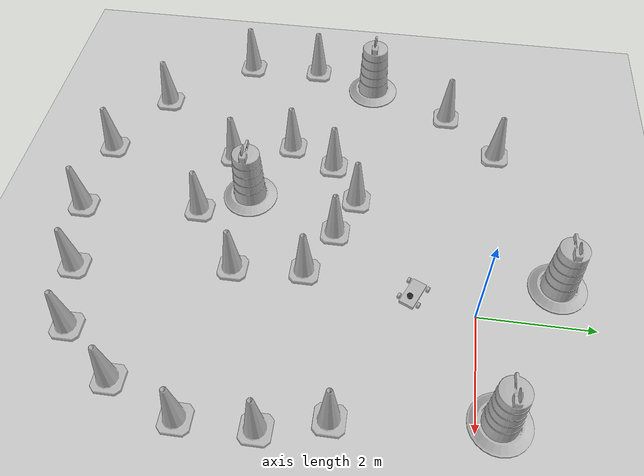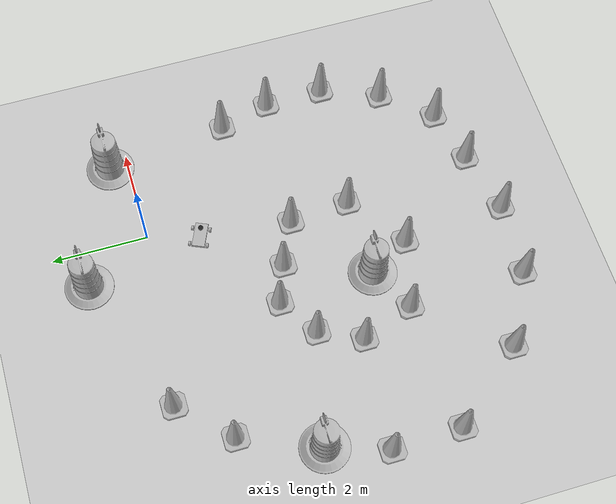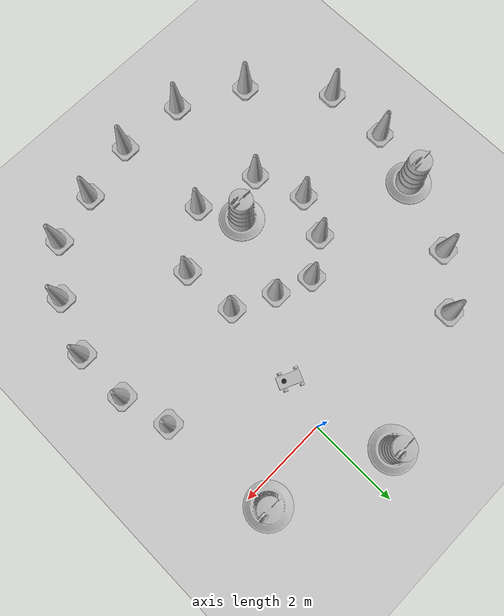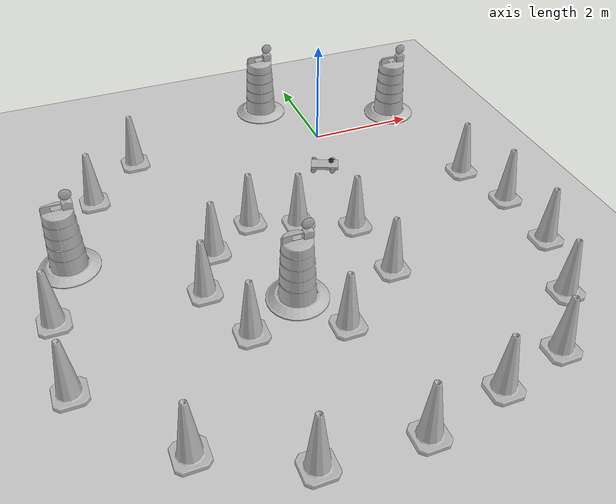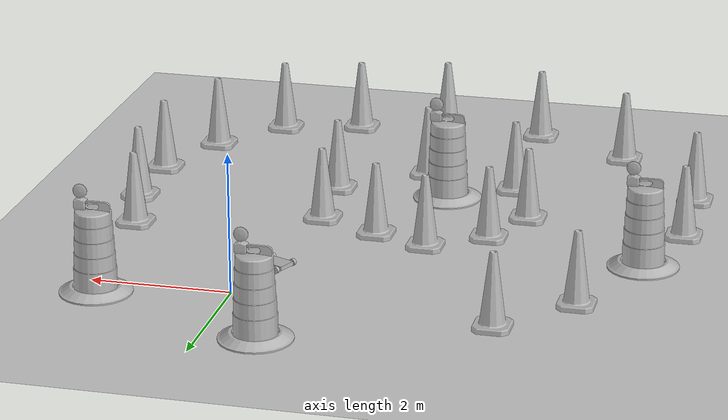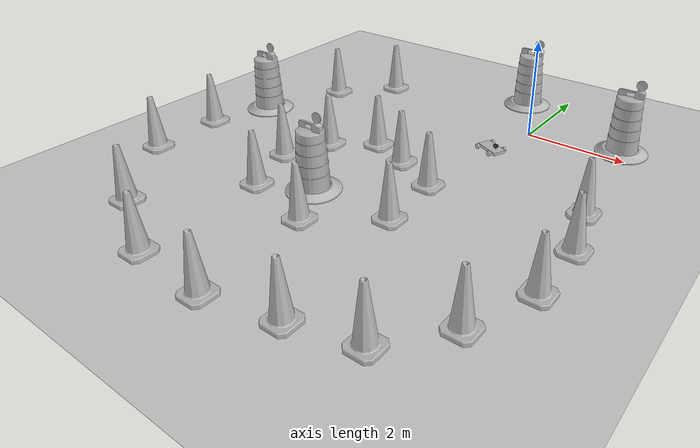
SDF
<sdf version="1.7">
 <world name="default">
  <light name="sun" type="directional">
   <pose>0 0 10 0 -0 0</pose>
   <diffuse>0.8 0.8 0.8 1</diffuse>
   <specular>0.2 0.2 0.2 1</specular>
   <attenuation>
    <range>1000</range>
    <constant>0.9</constant>
    <linear>0.01</linear>
    <quadratic>0.001</quadratic>
   </attenuation>
   <direction>-0.5 0.1 -0.9</direction>
   <spot><inner_angle>0</inner_angle><outer_angle>0</outer_angle><falloff>0</falloff></spot>
  </light>
  <model name="ground_plane">
   <static>1</static>
   <link name="link">
    <collision name="collision">
     <geometry><plane><normal>0 0 1</normal><size>100 100</size></plane></geometry>
     <surface>
      <contact><collide_bitmask>65535</collide_bitmask></contact>
      <friction><ode><mu>100</mu><mu2>50</mu2></ode></friction>
     </surface>
    </collision>
    <visual name="visual">
     <cast_shadows>0</cast_shadows>
     <geometry><plane><normal>0 0 1</normal><size>100 100</size></plane></geometry>
     <material>
      <script><uri>file://media/materials/scripts/gazebo.material</uri><name>Gazebo/Grey</name></script>
     </material>
    </visual>
   </link>
  </model>
  <gravity>0 0 -9.8</gravity>
  <magnetic_field>6e-06 2.3e-05 -4.2e-05</magnetic_field>
  <atmosphere type="adiabatic"/>
  <physics type="ode">
   <max_step_size>0.001</max_step_size>
   <real_time_factor>1</real_time_factor>
   <real_time_update_rate>1000</real_time_update_rate>
  </physics>
  <scene><ambient>0.4 0.4 0.4 1</ambient><background>0.7 0.7 0.7 1</background><shadows>1</shadows></scene>
  <spherical_coordinates>
   <surface_model>EARTH_WGS84</surface_model>
   <latitude_deg>0</latitude_deg>
   <longitude_deg>0</longitude_deg>
   <elevation>0</elevation>
   <heading_deg>0</heading_deg>
  </spherical_coordinates>
  <model name="Construction Barrel">
   <link name="link">
    <inertial>
     <pose>0 0 0.4 0 -0 0</pose>
     <mass>500</mass>
     <inertia><ixx>51.2096</ixx><iyy>51.2096</iyy><izz>25</izz><ixy>0</ixy><ixz>0</ixz><iyz>0</iyz></inertia>
    </inertial>
    <collision name="collision">
     <geometry><mesh><uri>model://construction_barrel/meshes/construction_barrel.dae</uri></mesh></geometry>
    </collision>
    <visual name="visual">
     <geometry><mesh><uri>model://construction_barrel/meshes/construction_barrel.dae</uri></mesh></geometry>
    </visual>
   </link>
   <pose>-0.756328 1.39221 -0 0 -0 -3.9e-05</pose>
  </model>
  <model name="Construction Barrel_0">
   <link name="link">
    <inertial>
     <pose>0 0 0.4 0 -0 0</pose>
     <mass>500</mass>
     <inertia><ixx>51.2096</ixx><iyy>51.2096</iyy><izz>25</izz><ixy>0</ixy><ixz>0</ixz><iyz>0</iyz></inertia>
    </inertial>
    <collision name="collision">
     <geometry><mesh><uri>model://construction_barrel/meshes/construction_barrel.dae</uri></mesh></geometry>
    </collision>
    <visual name="visual">
     <geometry><mesh><uri>model://construction_barrel/meshes/construction_barrel.dae</uri></mesh></geometry>
    </visual>
   </link>
   <pose>1.80011 0.377121 -1e-06 3e-06 7e-06 -3.4e-05</pose>
  </model>
  <model name="Construction Cone">
   <link name="link">
    <collision name="collision">
     <geometry>
      <mesh><scale>10 10 10</scale><uri>model://construction_cone/meshes/construction_cone.dae</uri></mesh>
     </geometry>
    </collision>
    <visual name="visual">
     <geometry>
      <mesh><scale>10 10 10</scale><uri>model://construction_cone/meshes/construction_cone.dae</uri></mesh>
     </geometry>
    </visual>
    <inertial>
     <inertia><ixx>1</ixx><ixy>0</ixy><ixz>0</ixz><iyy>1</iyy><iyz>0</iyz><izz>1</izz></inertia>
     <mass>1</mass>
    </inertial>
   </link>
   <pose>-2.19745 -2.25046 -0 0 -0 0</pose>
  </model>
  <model name="Construction Cone_0">
   <link name="link">
    <collision name="collision">
     <geometry>
      <mesh><scale>10 10 10</scale><uri>model://construction_cone/meshes/construction_cone.dae</uri></mesh>
     </geometry>
    </collision>
    <visual name="visual">
     <geometry>
      <mesh><scale>10 10 10</scale><uri>model://construction_cone/meshes/construction_cone.dae</uri></mesh>
     </geometry>
    </visual>
    <inertial>
     <inertia><ixx>1</ixx><ixy>0</ixy><ixz>0</ixz><iyy>1</iyy><iyz>0</iyz><izz>1</izz></inertia>
     <mass>1</mass>
    </inertial>
   </link>
   <pose>-1.40494 -2.55135 -5e-06 -4e-06 1e-06 0</pose>
  </model>
  <model name="Construction Cone_1">
   <link name="link">
    <collision name="collision">
     <geometry>
      <mesh><scale>10 10 10</scale><uri>model://construction_cone/meshes/construction_cone.dae</uri></mesh>
     </geometry>
    </collision>
    <visual name="visual">
     <geometry>
      <mesh><scale>10 10 10</scale><uri>model://construction_cone/meshes/construction_cone.dae</uri></mesh>
     </geometry>
    </visual>
    <inertial>
     <inertia><ixx>1</ixx><ixy>0</ixy><ixz>0</ixz><iyy>1</iyy><iyz>0</iyz><izz>1</izz></inertia>
     <mass>1</mass>
    </inertial>
   </link>
   <pose>-0.501986 -2.9745 -0 -0 -0 -0</pose>
  </model>
  <model name="Construction Cone_2">
   <link name="link">
    <collision name="collision">
     <geometry>
      <mesh><scale>10 10 10</scale><uri>model://construction_cone/meshes/construction_cone.dae</uri></mesh>
     </geometry>
    </collision>
    <visual name="visual">
     <geometry>
      <mesh><scale>10 10 10</scale><uri>model://construction_cone/meshes/construction_cone.dae</uri></mesh>
     </geometry>
    </visual>
    <inertial>
     <inertia><ixx>1</ixx><ixy>0</ixy><ixz>0</ixz><iyy>1</iyy><iyz>0</iyz><izz>1</izz></inertia>
     <mass>1</mass>
    </inertial>
   </link>
   <pose>2.09724 -2.18232 -0 0 -0 0</pose>
  </model>
  <model name="Construction Cone_3">
   <link name="link">
    <collision name="collision">
     <geometry>
      <mesh><scale>10 10 10</scale><uri>model://construction_cone/meshes/construction_cone.dae</uri></mesh>
     </geometry>
    </collision>
    <visual name="visual">
     <geometry>
      <mesh><scale>10 10 10</scale><uri>model://construction_cone/meshes/construction_cone.dae</uri></mesh>
     </geometry>
    </visual>
    <inertial>
     <inertia><ixx>1</ixx><ixy>0</ixy><ixz>0</ixz><iyy>1</iyy><iyz>0</iyz><izz>1</izz></inertia>
     <mass>1</mass>
    </inertial>
   </link>
   <pose>-3.69879 0.345038 -6e-06 -4e-06 0 0</pose>
  </model>
  <model name="Construction Cone_4">
   <link name="link">
    <collision name="collision">
     <geometry>
      <mesh><scale>10 10 10</scale><uri>model://construction_cone/meshes/construction_cone.dae</uri></mesh>
     </geometry>
    </collision>
    <visual name="visual">
     <geometry>
      <mesh><scale>10 10 10</scale><uri>model://construction_cone/meshes/construction_cone.dae</uri></mesh>
     </geometry>
    </visual>
    <inertial>
     <inertia><ixx>1</ixx><ixy>0</ixy><ixz>0</ixz><iyy>1</iyy><iyz>0</iyz><izz>1</izz></inertia>
     <mass>1</mass>
    </inertial>
   </link>
   <pose>-0.406438 -4.23374 -6e-06 -4e-06 0 0</pose>
  </model>
  <model name="Construction Cone_5">
   <link name="link">
    <collision name="collision">
     <geometry>
      <mesh><scale>10 10 10</scale><uri>model://construction_cone/meshes/construction_cone.dae</uri></mesh>
     </geometry>
    </collision>
    <visual name="visual">
     <geometry>
      <mesh><scale>10 10 10</scale><uri>model://construction_cone/meshes/construction_cone.dae</uri></mesh>
     </geometry>
    </visual>
    <inertial>
     <inertia><ixx>1</ixx><ixy>0</ixy><ixz>0</ixz><iyy>1</iyy><iyz>0</iyz><izz>1</izz></inertia>
     <mass>1</mass>
    </inertial>
   </link>
   <pose>2.38815 -3.2576 -0 0 -1e-06 0</pose>
  </model>
  <model name="Construction Cone_6">
   <link name="link">
    <collision name="collision">
     <geometry>
      <mesh><scale>10 10 10</scale><uri>model://construction_cone/meshes/construction_cone.dae</uri></mesh>
     </geometry>
    </collision>
    <visual name="visual">
     <geometry>
      <mesh><scale>10 10 10</scale><uri>model://construction_cone/meshes/construction_cone.dae</uri></mesh>
     </geometry>
    </visual>
    <inertial>
     <inertia><ixx>1</ixx><ixy>0</ixy><ixz>0</ixz><iyy>1</iyy><iyz>0</iyz><izz>1</izz></inertia>
     <mass>1</mass>
    </inertial>
   </link>
   <pose>2.39316 -4.49605 -0 0 -0 0</pose>
  </model>
  <model name="Construction Cone_7">
   <link name="link">
    <collision name="collision">
     <geometry>
      <mesh><scale>10 10 10</scale><uri>model://construction_cone/meshes/construction_cone.dae</uri></mesh>
     </geometry>
    </collision>
    <visual name="visual">
     <geometry>
      <mesh><scale>10 10 10</scale><uri>model://construction_cone/meshes/construction_cone.dae</uri></mesh>
     </geometry>
    </visual>
    <inertial>
     <inertia><ixx>1</ixx><ixy>0</ixy><ixz>0</ixz><iyy>1</iyy><iyz>0</iyz><izz>1</izz></inertia>
     <mass>1</mass>
    </inertial>
   </link>
   <pose>-3.00495 -2.78053 -0 0 -0 0</pose>
  </model>
  <model name="Construction Cone_8">
   <link name="link">
    <collision name="collision">
     <geometry>
      <mesh><scale>10 10 10</scale><uri>model://construction_cone/meshes/construction_cone.dae</uri></mesh>
     </geometry>
    </collision>
    <visual name="visual">
     <geometry>
      <mesh><scale>10 10 10</scale><uri>model://construction_cone/meshes/construction_cone.dae</uri></mesh>
     </geometry>
    </visual>
    <inertial>
     <inertia><ixx>1</ixx><ixy>0</ixy><ixz>0</ixz><iyy>1</iyy><iyz>0</iyz><izz>1</izz></inertia>
     <mass>1</mass>
    </inertial>
   </link>
   <pose>-4.64786 -0.646522 -0 0 -0 0</pose>
  </model>
  <model name="Construction Barrel_1">
   <link name="link">
    <inertial>
     <pose>0 0 0.4 0 -0 0</pose>
     <mass>500</mass>
     <inertia><ixx>51.2096</ixx><iyy>51.2096</iyy><izz>25</izz><ixy>0</ixy><ixz>0</ixz><iyz>0</iyz></inertia>
    </inertial>
    <collision name="collision">
     <geometry><mesh><uri>model://construction_barrel/meshes/construction_barrel.dae</uri></mesh></geometry>
    </collision>
    <visual name="visual">
     <geometry><mesh><uri>model://construction_barrel/meshes/construction_barrel.dae</uri></mesh></geometry>
    </visual>
   </link>
   <pose>-5.3109 -2.23712 -2e-06 4e-06 7e-06 -2.3e-05</pose>
  </model>
  <model name="Construction Barrel_2">
   <link name="link">
    <inertial>
     <pose>0 0 0.4 0 -0 0</pose>
     <mass>500</mass>
     <inertia><ixx>51.2096</ixx><iyy>51.2096</iyy><izz>25</izz><ixy>0</ixy><ixz>0</ixz><iyz>0</iyz></inertia>
    </inertial>
    <collision name="collision">
     <geometry><mesh><uri>model://construction_barrel/meshes/construction_barrel.dae</uri></mesh></geometry>
    </collision>
    <visual name="visual">
     <geometry><mesh><uri>model://construction_barrel/meshes/construction_barrel.dae</uri></mesh></geometry>
    </visual>
   </link>
   <pose>-2.07699 -4.26202 -2e-06 4e-06 7e-06 -1.8e-05</pose>
  </model>
  <audio><device>default</device></audio>
  <model name="robot">
   <link name="base_link">
    <inertial>
     <pose>0.001208 0 0.25099 0 -0 0</pose>
     <mass>10.1</mass>
     <inertia>
      <ixx>0.0209149</ixx>
      <ixy>6.5381e-10</ixy>
      <ixz>-0.00120792</ixz>
      <iyy>0.0410656</iyy>
      <iyz>5.2628e-05</iyz>
      <izz>0.0253367</izz>
     </inertia>
    </inertial>
    <collision name="base_link_fixed_joint_lump__chassis_collision">
     <pose>0 0 0.25 0 -0 0</pose>
     <geometry><box><size>0.525 0.267 0.06</size></box></geometry>
    </collision>
    <collision name="base_link_fixed_joint_lump__laser_frame_collision_1">
     <pose>0.122 0 0.35 0 -0 0</pose>
     <geometry><cylinder><length>0.04</length><radius>0.05</radius></cylinder></geometry>
    </collision>
    <visual name="base_link_fixed_joint_lump__chassis_visual">
     <pose>0 0 0.25 0 -0 0</pose>
     <geometry><box><size>0.525 0.267 0.06</size></box></geometry>
    </visual>
    <visual name="base_link_fixed_joint_lump__laser_frame_visual_1">
     <pose>0.122 0 0.35 0 -0 0</pose>
     <geometry><cylinder><length>0.04</length><radius>0.05</radius></cylinder></geometry>
     <material>
      <script><name>Gazebo/Black</name><uri>file://media/materials/scripts/gazebo.material</uri></script>
     </material>
    </visual>
    <visual name="base_link_fixed_joint_lump__laser_frame_visual_2">
     <pose>0.122 0 0.3 0 -0 0</pose>
     <geometry><cylinder><length>0.1</length><radius>0.01</radius></cylinder></geometry>
     <material>
      <script><name>Gazebo/Black</name><uri>file://media/materials/scripts/gazebo.material</uri></script>
     </material>
    </visual>
    <sensor name="laser" type="ray">
     <visualize>0</visualize>
     <update_rate>10</update_rate>
     <ray>
      <scan>
       <horizontal>
        <samples>360</samples>
        <min_angle>-3.14</min_angle>
        <max_angle>3.14</max_angle>
        <resolution>1</resolution>
       </horizontal>
       <vertical><samples>1</samples><min_angle>0</min_angle><max_angle>0</max_angle></vertical>
      </scan>
      <range><min>0.3</min><max>12</max></range>
     </ray>
     <plugin name="laser_controller" filename="libgazebo_ros_ray_sensor.so">
      <ros><argument>~/out:=scan</argument></ros>
      <output_type>sensor_msgs/LaserScan</output_type>
      <frame_name>laser_frame</frame_name>
     </plugin>
     <pose>0.122 0 0.35 0 -0 0</pose>
    </sensor>
   </link>
   <joint name="left_wheel_joint" type="revolute">
    <pose relative_to="base_link">-0.213 0.1835 0.24 -1.57 0 0</pose>
    <parent>base_link</parent>
    <child>left_wheel</child>
    <axis>
     <xyz>0 0 1</xyz>
     <limit><lower>-1e+16</lower><upper>1e+16</upper></limit>
     <dynamics>
      <damping>0</damping>
      <friction>0</friction>
      <spring_reference>0</spring_reference>
      <spring_stiffness>0</spring_stiffness>
     </dynamics>
    </axis>
   </joint>
   <link name="left_wheel">
    <pose relative_to="left_wheel_joint">0 0 0 0 -0 0</pose>
    <inertial>
     <mass>0.50768</mass>
     <inertia>
      <ixx>0.00048677</ixx>
      <ixy>-6.188e-10</ixy>
      <ixz>-5.6106e-08</ixz>
      <iyy>0.00085979</iyy>
      <iyz>7.7341e-10</iyz>
      <izz>0.0004867</izz>
     </inertia>
    </inertial>
    <collision name="left_wheel_collision">
     <geometry><cylinder><length>0.045</length><radius>0.05</radius></cylinder></geometry>
    </collision>
    <visual name="left_wheel_visual">
     <geometry><cylinder><length>0.045</length><radius>0.05</radius></cylinder></geometry>
    </visual>
   </link>
   <joint name="right_wheel_joint" type="revolute">
    <pose relative_to="base_link">-0.213 -0.1835 0.24 -1.57 0 0</pose>
    <parent>base_link</parent>
    <child>right_wheel</child>
    <axis>
     <xyz>0 0 1</xyz>
     <limit><lower>-1e+16</lower><upper>1e+16</upper></limit>
     <dynamics>
      <damping>0</damping>
      <friction>0</friction>
      <spring_reference>0</spring_reference>
      <spring_stiffness>0</spring_stiffness>
     </dynamics>
    </axis>
   </joint>
   <link name="right_wheel">
    <pose relative_to="right_wheel_joint">0 0 0 0 -0 0</pose>
    <inertial>
     <mass>0.50768</mass>
     <inertia>
      <ixx>0.00048677</ixx>
      <ixy>-6.188e-10</ixy>
      <ixz>-5.6106e-08</ixz>
      <iyy>0.00085979</iyy>
      <iyz>7.7341e-10</iyz>
      <izz>0.0004867</izz>
     </inertia>
    </inertial>
    <collision name="right_wheel_collision">
     <geometry><cylinder><length>0.045</length><radius>0.05</radius></cylinder></geometry>
    </collision>
    <visual name="right_wheel_visual">
     <geometry><cylinder><length>0.045</length><radius>0.05</radius></cylinder></geometry>
    </visual>
   </link>
   <joint name="steering_left_joint" type="revolute">
    <pose relative_to="base_link">0.1505 0.1835 0.24 0 -0 0</pose>
    <parent>base_link</parent>
    <child>steering_left_link</child>
    <axis>
     <xyz>0 0 1</xyz>
     <limit><lower>-1e+16</lower><upper>1e+16</upper></limit>
     <dynamics><spring_reference>0</spring_reference><spring_stiffness>0</spring_stiffness></dynamics>
    </axis>
   </joint>
   <link name="steering_left_link">
    <pose relative_to="steering_left_joint">0 0 0 0 -0 0</pose>
    <inertial>
     <mass>0.005</mass>
     <inertia><ixx>0.1</ixx><ixy>0</ixy><ixz>0</ixz><iyy>0.1</iyy><iyz>0</iyz><izz>0.1</izz></inertia>
    </inertial>
    <visual name="steering_left_link_visual"><geometry><box><size>0.01 0.01 0.01</size></box></geometry></visual>
   </link>
   <joint name="traction_left_joint" type="revolute">
    <pose relative_to="steering_left_link">0 0 0 -1.57 1.57 -0</pose>
    <parent>steering_left_link</parent>
    <child>wheel_front_left_link</child>
    <axis>
     <xyz>0 0 1</xyz>
     <limit><lower>-1e+16</lower><upper>1e+16</upper></limit>
     <dynamics><spring_reference>0</spring_reference><spring_stiffness>0</spring_stiffness></dynamics>
    </axis>
   </joint>
   <link name="wheel_front_left_link">
    <pose relative_to="traction_left_joint">0 0 0 0 -0 0</pose>
    <inertial>
     <mass>0.50768</mass>
     <inertia>
      <ixx>0.00048677</ixx>
      <ixy>-6.188e-10</ixy>
      <ixz>-5.6106e-08</ixz>
      <iyy>0.00085979</iyy>
      <iyz>7.7341e-10</iyz>
      <izz>0.0004867</izz>
     </inertia>
    </inertial>
    <collision name="wheel_front_left_link_collision">
     <geometry><cylinder><length>0.045</length><radius>0.05</radius></cylinder></geometry>
    </collision>
    <visual name="wheel_front_left_link_visual">
     <geometry><cylinder><length>0.045</length><radius>0.05</radius></cylinder></geometry>
    </visual>
   </link>
   <joint name="steering_right_joint" type="revolute">
    <pose relative_to="base_link">0.1505 -0.1835 0.24 0 -0 0</pose>
    <parent>base_link</parent>
    <child>steering_right_link</child>
    <axis>
     <xyz>0 0 1</xyz>
     <limit><lower>-1e+16</lower><upper>1e+16</upper></limit>
     <dynamics><spring_reference>0</spring_reference><spring_stiffness>0</spring_stiffness></dynamics>
    </axis>
   </joint>
   <link name="steering_right_link">
    <pose relative_to="steering_right_joint">0 0 0 0 -0 0</pose>
    <inertial>
     <mass>0.005</mass>
     <inertia><ixx>0.1</ixx><ixy>0</ixy><ixz>0</ixz><iyy>0.1</iyy><iyz>0</iyz><izz>0.1</izz></inertia>
    </inertial>
    <visual name="steering_right_link_visual"><geometry><box><size>0.01 0.01 0.01</size></box></geometry></visual>
   </link>
   <joint name="traction_right_joint" type="revolute">
    <pose relative_to="steering_right_link">0 0 0 -1.57 1.57 -0</pose>
    <parent>steering_right_link</parent>
    <child>wheel_front_right_link</child>
    <axis>
     <xyz>0 0 1</xyz>
     <limit><lower>-1e+16</lower><upper>1e+16</upper></limit>
     <dynamics><spring_reference>0</spring_reference><spring_stiffness>0</spring_stiffness></dynamics>
    </axis>
   </joint>
   <link name="wheel_front_right_link">
    <pose relative_to="traction_right_joint">0 0 0 0 -0 0</pose>
    <inertial>
     <mass>0.50768</mass>
     <inertia>
      <ixx>0.00048677</ixx>
      <ixy>-6.188e-10</ixy>
      <ixz>-5.6106e-08</ixz>
      <iyy>0.00085979</iyy>
      <iyz>7.7341e-10</iyz>
      <izz>0.0004867</izz>
     </inertia>
    </inertial>
    <collision name="wheel_front_right_link_collision">
     <geometry><cylinder><length>0.045</length><radius>0.05</radius></cylinder></geometry>
    </collision>
    <visual name="wheel_front_right_link_visual">
     <geometry><cylinder><length>0.045</length><radius>0.05</radius></cylinder></geometry>
    </visual>
   </link>
   <static>0</static>
   <plugin name="gazebo_ros2_control" filename="libgazebo_ros2_control.so">
    <parameters>/home/kaban/project_robot_ws_sim/project_robot_ws/install/gazebo_ros2_control_demos/share/gazebo_ros2_control_demos/config/bicycle_drive_controller.yaml</parameters>
    <ros>
     <remapping>/ackermann_controller/tf_odometry:=/tf</remapping>
     <remapping>~/robot_description:=/robot_description</remapping>
     <remapping>/ackermann_controller/reference_unstamped:=/cmd_vel</remapping>
    </ros>
   </plugin>
   <pose>-0.283936 -1.06932 -0.190128 -3e-06 0.000673 -0.416961</pose>
  </model>
  <model name="Construction Cone_6_clone">
   <link name="link">
    <collision name="collision">
     <geometry>
      <mesh><scale>10 10 10</scale><uri>model://construction_cone/meshes/construction_cone.dae</uri></mesh>
     </geometry>
    </collision>
    <visual name="visual">
     <geometry>
      <mesh><scale>10 10 10</scale><uri>model://construction_cone/meshes/construction_cone.dae</uri></mesh>
     </geometry>
    </visual>
    <inertial>
     <inertia><ixx>1</ixx><ixy>0</ixy><ixz>0</ixz><iyy>1</iyy><iyz>0</iyz><izz>1</izz></inertia>
     <mass>1</mass>
    </inertial>
   </link>
   <pose>1.90677 -5.70695 -1e-05 -1e-06 0 0</pose>
  </model>
  <model name="Construction Cone_6_clone_0">
   <link name="link">
    <collision name="collision">
     <geometry>
      <mesh><scale>10 10 10</scale><uri>model://construction_cone/meshes/construction_cone.dae</uri></mesh>
     </geometry>
    </collision>
    <visual name="visual">
     <geometry>
      <mesh><scale>10 10 10</scale><uri>model://construction_cone/meshes/construction_cone.dae</uri></mesh>
     </geometry>
    </visual>
    <inertial>
     <inertia><ixx>1</ixx><ixy>0</ixy><ixz>0</ixz><iyy>1</iyy><iyz>0</iyz><izz>1</izz></inertia>
     <mass>1</mass>
    </inertial>
   </link>
   <pose>1.09804 -6.69638 -0 0 -0 0</pose>
  </model>
  <model name="Construction Cone_6_clone_1">
   <link name="link">
    <collision name="collision">
     <geometry>
      <mesh><scale>10 10 10</scale><uri>model://construction_cone/meshes/construction_cone.dae</uri></mesh>
     </geometry>
    </collision>
    <visual name="visual">
     <geometry>
      <mesh><scale>10 10 10</scale><uri>model://construction_cone/meshes/construction_cone.dae</uri></mesh>
     </geometry>
    </visual>
    <inertial>
     <inertia><ixx>1</ixx><ixy>0</ixy><ixz>0</ixz><iyy>1</iyy><iyz>0</iyz><izz>1</izz></inertia>
     <mass>1</mass>
    </inertial>
   </link>
   <pose>-0.076278 -7.00191 -0 0 -0 0</pose>
  </model>
  <model name="Construction Cone_6_clone_2">
   <link name="link">
    <collision name="collision">
     <geometry>
      <mesh><scale>10 10 10</scale><uri>model://construction_cone/meshes/construction_cone.dae</uri></mesh>
     </geometry>
    </collision>
    <visual name="visual">
     <geometry>
      <mesh><scale>10 10 10</scale><uri>model://construction_cone/meshes/construction_cone.dae</uri></mesh>
     </geometry>
    </visual>
    <inertial>
     <inertia><ixx>1</ixx><ixy>0</ixy><ixz>0</ixz><iyy>1</iyy><iyz>0</iyz><izz>1</izz></inertia>
     <mass>1</mass>
    </inertial>
   </link>
   <pose>-1.40937 -7.31519 -0 0 -0 0</pose>
  </model>
  <model name="Construction Cone_6_clone_3">
   <link name="link">
    <collision name="collision">
     <geometry>
      <mesh><scale>10 10 10</scale><uri>model://construction_cone/meshes/construction_cone.dae</uri></mesh>
     </geometry>
    </collision>
    <visual name="visual">
     <geometry>
      <mesh><scale>10 10 10</scale><uri>model://construction_cone/meshes/construction_cone.dae</uri></mesh>
     </geometry>
    </visual>
    <inertial>
     <inertia><ixx>1</ixx><ixy>0</ixy><ixz>0</ixz><iyy>1</iyy><iyz>0</iyz><izz>1</izz></inertia>
     <mass>1</mass>
    </inertial>
   </link>
   <pose>-2.93901 -7.21911 0 -0 -0 -0</pose>
  </model>
  <model name="Construction Cone_6_clone_4">
   <link name="link">
    <collision name="collision">
     <geometry>
      <mesh><scale>10 10 10</scale><uri>model://construction_cone/meshes/construction_cone.dae</uri></mesh>
     </geometry>
    </collision>
    <visual name="visual">
     <geometry>
      <mesh><scale>10 10 10</scale><uri>model://construction_cone/meshes/construction_cone.dae</uri></mesh>
     </geometry>
    </visual>
    <inertial>
     <inertia><ixx>1</ixx><ixy>0</ixy><ixz>0</ixz><iyy>1</iyy><iyz>0</iyz><izz>1</izz></inertia>
     <mass>1</mass>
    </inertial>
   </link>
   <pose>-4.38783 -6.46723 -0 0 -0 0</pose>
  </model>
  <model name="Construction Cone_6_clone_5">
   <link name="link">
    <collision name="collision">
     <geometry>
      <mesh><scale>10 10 10</scale><uri>model://construction_cone/meshes/construction_cone.dae</uri></mesh>
     </geometry>
    </collision>
    <visual name="visual">
     <geometry>
      <mesh><scale>10 10 10</scale><uri>model://construction_cone/meshes/construction_cone.dae</uri></mesh>
     </geometry>
    </visual>
    <inertial>
     <inertia><ixx>1</ixx><ixy>0</ixy><ixz>0</ixz><iyy>1</iyy><iyz>0</iyz><izz>1</izz></inertia>
     <mass>1</mass>
    </inertial>
   </link>
   <pose>-5.67872 -4.92231 -5e-06 5e-06 -1e-06 0</pose>
  </model>
  <model name="Construction Cone_6_clone_6">
   <link name="link">
    <collision name="collision">
     <geometry>
      <mesh><scale>10 10 10</scale><uri>model://construction_cone/meshes/construction_cone.dae</uri></mesh>
     </geometry>
    </collision>
    <visual name="visual">
     <geometry>
      <mesh><scale>10 10 10</scale><uri>model://construction_cone/meshes/construction_cone.dae</uri></mesh>
     </geometry>
    </visual>
    <inertial>
     <inertia><ixx>1</ixx><ixy>0</ixy><ixz>0</ixz><iyy>1</iyy><iyz>0</iyz><izz>1</izz></inertia>
     <mass>1</mass>
    </inertial>
   </link>
   <pose>-5.71373 -3.46971 0 -0 -0 -0</pose>
  </model>
  <model name="Construction Cone_6_clone_7">
   <link name="link">
    <collision name="collision">
     <geometry>
      <mesh><scale>10 10 10</scale><uri>model://construction_cone/meshes/construction_cone.dae</uri></mesh>
     </geometry>
    </collision>
    <visual name="visual">
     <geometry>
      <mesh><scale>10 10 10</scale><uri>model://construction_cone/meshes/construction_cone.dae</uri></mesh>
     </geometry>
    </visual>
    <inertial>
     <inertia><ixx>1</ixx><ixy>0</ixy><ixz>0</ixz><iyy>1</iyy><iyz>0</iyz><izz>1</izz></inertia>
     <mass>1</mass>
    </inertial>
   </link>
   <pose>-1.59144 -5.12359 -4e-06 4e-06 -1e-06 0</pose>
  </model>
  <model name="Construction Cone_6_clone_8">
   <link name="link">
    <collision name="collision">
     <geometry>
      <mesh><scale>10 10 10</scale><uri>model://construction_cone/meshes/construction_cone.dae</uri></mesh>
     </geometry>
    </collision>
    <visual name="visual">
     <geometry>
      <mesh><scale>10 10 10</scale><uri>model://construction_cone/meshes/construction_cone.dae</uri></mesh>
     </geometry>
    </visual>
    <inertial>
     <inertia><ixx>1</ixx><ixy>0</ixy><ixz>0</ixz><iyy>1</iyy><iyz>0</iyz><izz>1</izz></inertia>
     <mass>1</mass>
    </inertial>
   </link>
   <pose>-3.00314 -4.75999 -0 0 -0 0</pose>
  </model>
  <model name="Construction Cone_6_clone_9">
   <link name="link">
    <collision name="collision">
     <geometry>
      <mesh><scale>10 10 10</scale><uri>model://construction_cone/meshes/construction_cone.dae</uri></mesh>
     </geometry>
    </collision>
    <visual name="visual">
     <geometry>
      <mesh><scale>10 10 10</scale><uri>model://construction_cone/meshes/construction_cone.dae</uri></mesh>
     </geometry>
    </visual>
    <inertial>
     <inertia><ixx>1</ixx><ixy>0</ixy><ixz>0</ixz><iyy>1</iyy><iyz>0</iyz><izz>1</izz></inertia>
     <mass>1</mass>
    </inertial>
   </link>
   <pose>-3.4087 -3.65652 -0 0 -0 0</pose>
  </model>
 </world>
</sdf>
